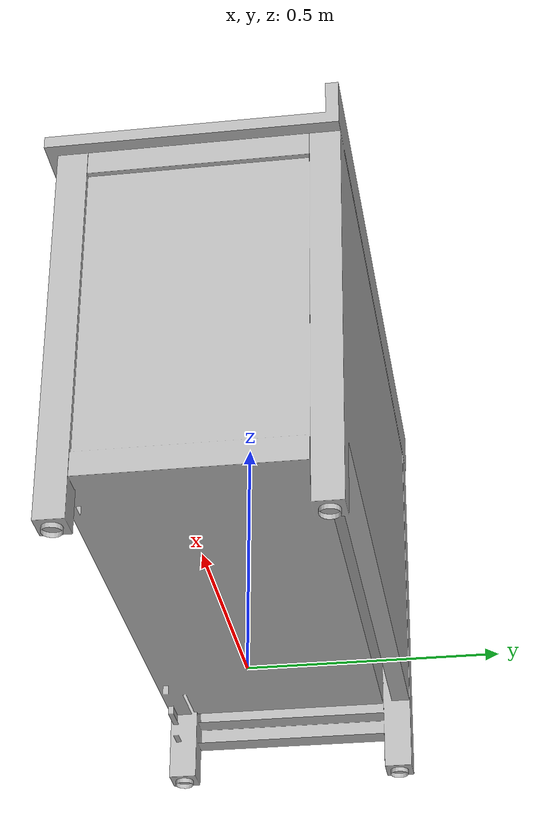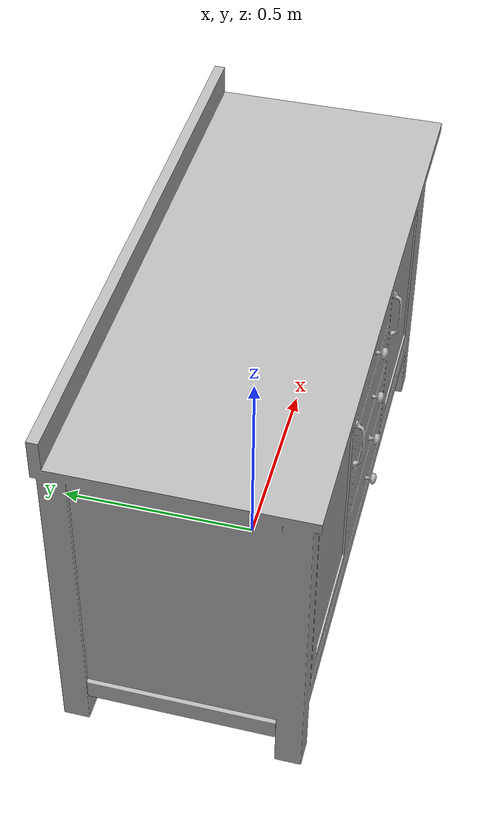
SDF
<?xml version='1.0'?>
<sdf version='1.6'>
  <model name='06_VanityCounterWithoutSink'>
    <link name='body'>
	  <inertial>
        <mass>48</mass>
        <pose frame=''>0 0 0 0 0 0</pose>
        <inertia>
          <ixx>4.0861</ixx>
          <ixy>0</ixy>
          <ixz>0</ixz>
          <iyy>10.0361</iyy>
          <iyz>0</iyz>
          <izz>7.57</izz>
        </inertia>
      </inertial>
      <pose frame=''>0 0 0 0 -0 0</pose>
      <self_collide>0</self_collide>
      <kinematic>0</kinematic>
      <gravity>1</gravity>
      <visual name='visual'>
        <geometry>
          <mesh>
            <uri>model://VanityCounterWithoutSink_aa0fa8736291_lod0/meshes/visual_LowPoly_06_VanityCounterWithoutSink.dae</uri>
          </mesh>
        </geometry>
		<meta> <layer> 1 </layer></meta>
      </visual>
      <collision name='collision_0'>
        <laser_retro>0</laser_retro>
        <max_contacts>10</max_contacts>
        <pose frame=''>0 0 0 0 -0 0</pose>
        <geometry>
          <mesh>
            <uri>model://VanityCounterWithoutSink_aa0fa8736291_lod0/meshes/collision_06_VanityCounterWithoutSink.dae</uri>
            <scale>1 1 1</scale>
          </mesh>
        </geometry>
		<surface>
          <friction>
            <ode>
              <mu>0.6</mu>
              <mu2>0.6</mu2>
              <fdir1>0 0 0</fdir1>
              <slip1>0</slip1>
              <slip2>0</slip2>
            </ode>
            <torsional>
              <coefficient>1</coefficient>
              <patch_radius>0</patch_radius>
              <surface_radius>0</surface_radius>
              <use_patch_radius>1</use_patch_radius>
              <ode>
                <slip>0</slip>
              </ode>
            </torsional>
          </friction>
        </surface>
      </collision>
    </link>
    <static>true</static>
  </model>
</sdf>
